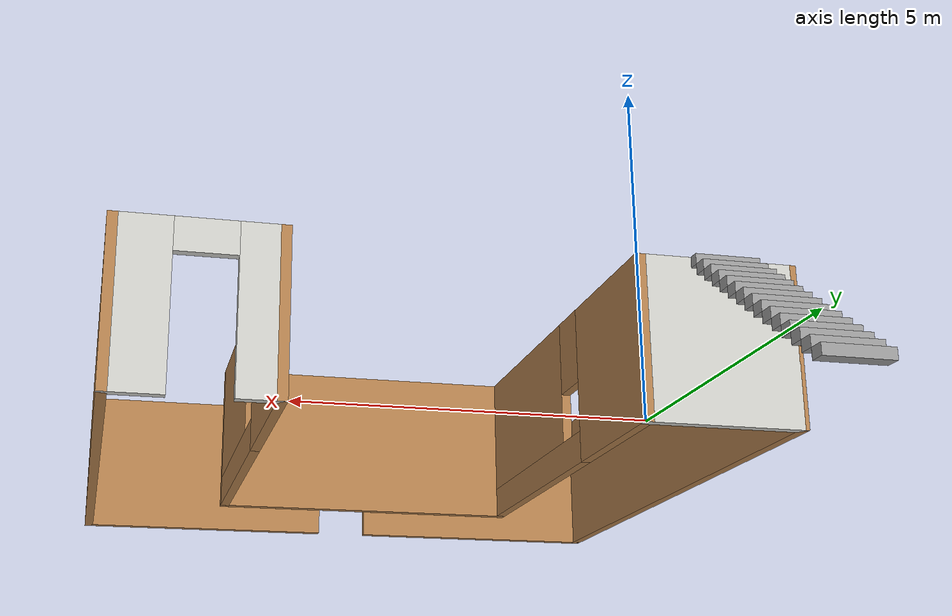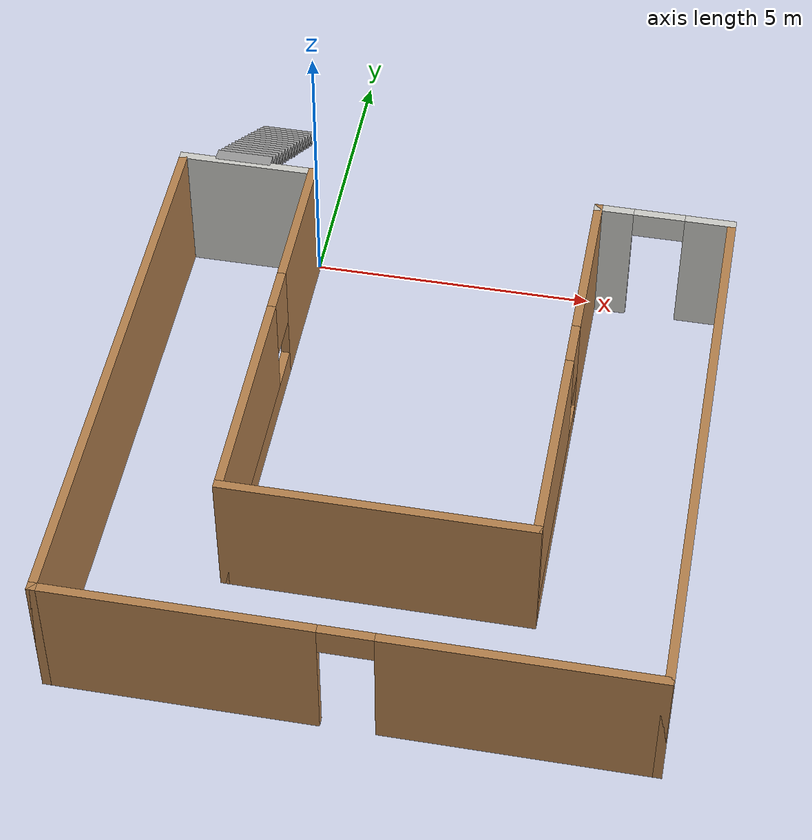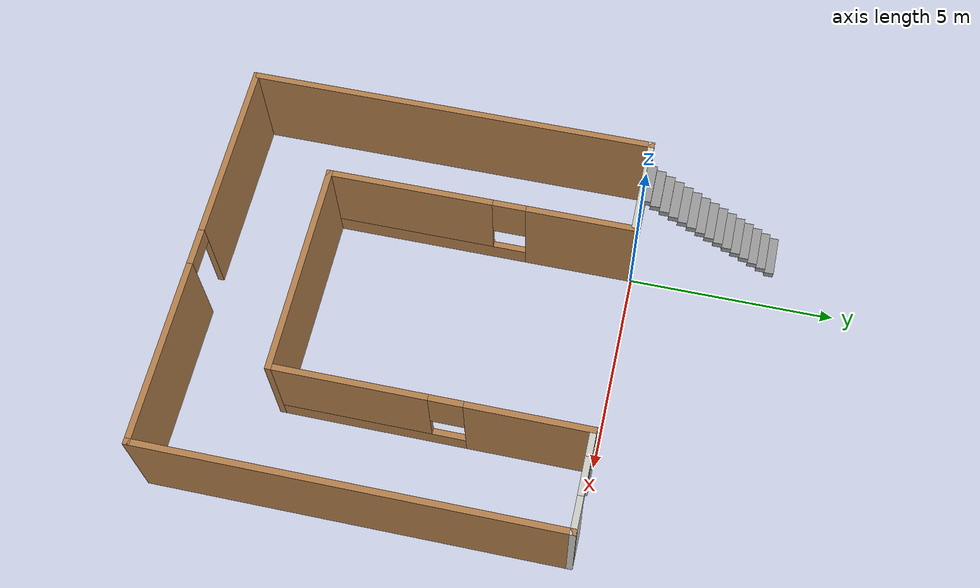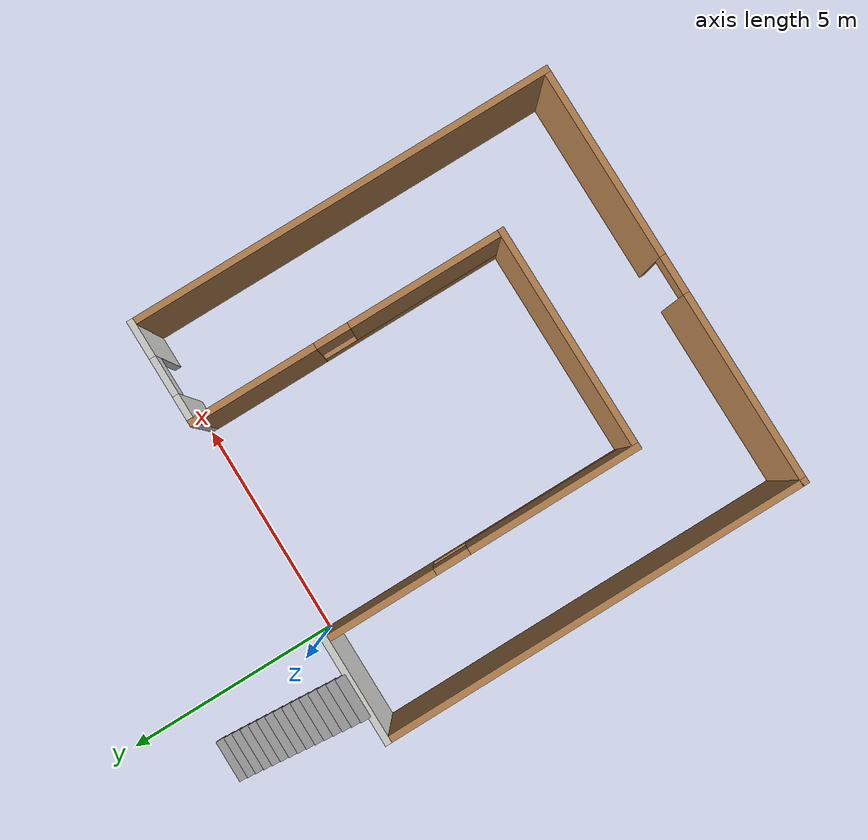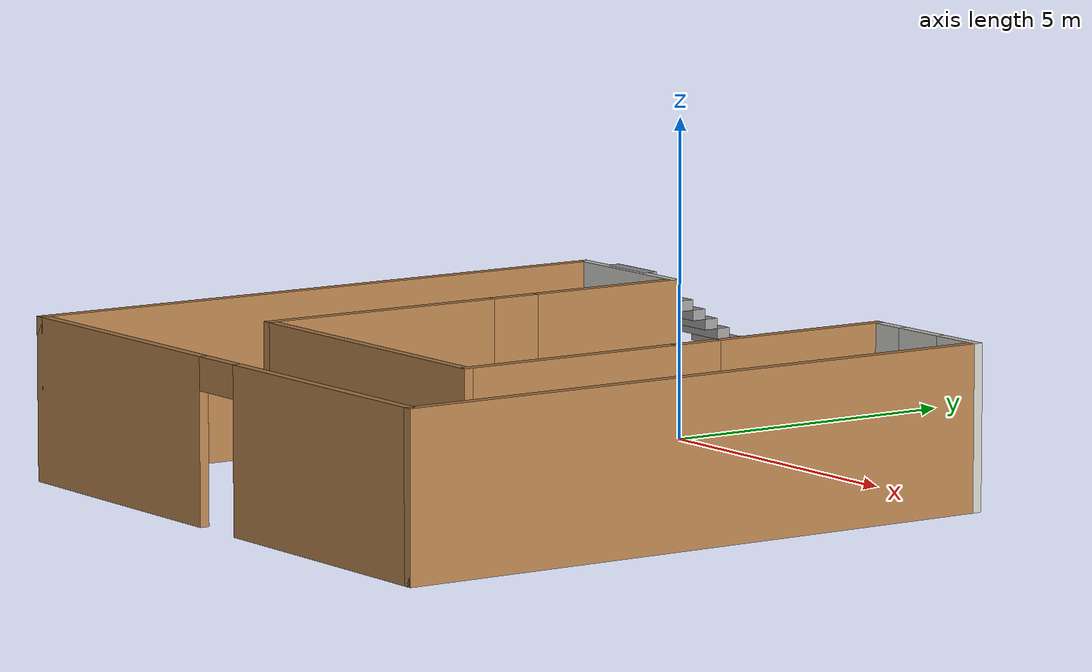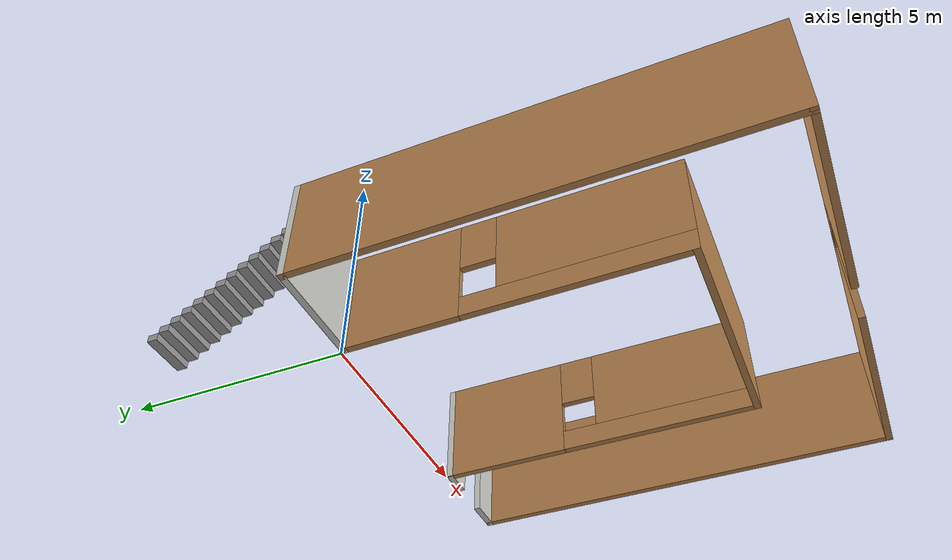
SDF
<?xml version='1.0'?>
<sdf version='1.6'>
  <model name='Casa'>
    <pose frame=''>2.50839 -3.29533 0 0 -0 0</pose>
    <link name='Stairs_0'>
      <visual name='Stairs_0_Visual_0'>
        <pose frame=''>-3.84178 6.603 0.083333 0 -0 0</pose>
        <geometry>
          <box>
            <size>1 0.233333 0.166667</size>
          </box>
        </geometry>
        <material>
          <script>
            <uri>file://media/materials/scripts/gazebo.material</uri>
            <name>Gazebo/Grey</name>
          </script>
          <ambient>1 1 1 1</ambient>
        </material>
      </visual>
      <collision name='Stairs_0_Collision_0'>
        <geometry>
          <box>
            <size>1 0.233333 0.166667</size>
          </box>
        </geometry>
        <pose frame=''>-3.84178 6.603 0.083333 0 -0 0</pose>
      </collision>
      <visual name='Stairs_0_Visual_1'>
        <pose frame=''>-3.84178 6.36967 0.25 0 -0 0</pose>
        <geometry>
          <box>
            <size>1 0.233333 0.166667</size>
          </box>
        </geometry>
        <material>
          <script>
            <uri>file://media/materials/scripts/gazebo.material</uri>
            <name>Gazebo/Grey</name>
          </script>
          <ambient>1 1 1 1</ambient>
        </material>
      </visual>
      <collision name='Stairs_0_Collision_1'>
        <geometry>
          <box>
            <size>1 0.233333 0.166667</size>
          </box>
        </geometry>
        <pose frame=''>-3.84178 6.36967 0.25 0 -0 0</pose>
      </collision>
      <visual name='Stairs_0_Visual_2'>
        <pose frame=''>-3.84178 6.13634 0.416667 0 -0 0</pose>
        <geometry>
          <box>
            <size>1 0.233333 0.166667</size>
          </box>
        </geometry>
        <material>
          <script>
            <uri>file://media/materials/scripts/gazebo.material</uri>
            <name>Gazebo/Grey</name>
          </script>
          <ambient>1 1 1 1</ambient>
        </material>
      </visual>
      <collision name='Stairs_0_Collision_2'>
        <geometry>
          <box>
            <size>1 0.233333 0.166667</size>
          </box>
        </geometry>
        <pose frame=''>-3.84178 6.13634 0.416667 0 -0 0</pose>
      </collision>
      <visual name='Stairs_0_Visual_3'>
        <pose frame=''>-3.84178 5.903 0.583333 0 -0 0</pose>
        <geometry>
          <box>
            <size>1 0.233333 0.166667</size>
          </box>
        </geometry>
        <material>
          <script>
            <uri>file://media/materials/scripts/gazebo.material</uri>
            <name>Gazebo/Grey</name>
          </script>
          <ambient>1 1 1 1</ambient>
        </material>
      </visual>
      <collision name='Stairs_0_Collision_3'>
        <geometry>
          <box>
            <size>1 0.233333 0.166667</size>
          </box>
        </geometry>
        <pose frame=''>-3.84178 5.903 0.583333 0 -0 0</pose>
      </collision>
      <visual name='Stairs_0_Visual_4'>
        <pose frame=''>-3.84178 5.66967 0.75 0 -0 0</pose>
        <geometry>
          <box>
            <size>1 0.233333 0.166667</size>
          </box>
        </geometry>
        <material>
          <script>
            <uri>file://media/materials/scripts/gazebo.material</uri>
            <name>Gazebo/Grey</name>
          </script>
          <ambient>1 1 1 1</ambient>
        </material>
      </visual>
      <collision name='Stairs_0_Collision_4'>
        <geometry>
          <box>
            <size>1 0.233333 0.166667</size>
          </box>
        </geometry>
        <pose frame=''>-3.84178 5.66967 0.75 0 -0 0</pose>
      </collision>
      <visual name='Stairs_0_Visual_5'>
        <pose frame=''>-3.84178 5.43634 0.916667 0 -0 0</pose>
        <geometry>
          <box>
            <size>1 0.233333 0.166667</size>
          </box>
        </geometry>
        <material>
          <script>
            <uri>file://media/materials/scripts/gazebo.material</uri>
            <name>Gazebo/Grey</name>
          </script>
          <ambient>1 1 1 1</ambient>
        </material>
      </visual>
      <collision name='Stairs_0_Collision_5'>
        <geometry>
          <box>
            <size>1 0.233333 0.166667</size>
          </box>
        </geometry>
        <pose frame=''>-3.84178 5.43634 0.916667 0 -0 0</pose>
      </collision>
      <visual name='Stairs_0_Visual_6'>
        <pose frame=''>-3.84178 5.203 1.08333 0 -0 0</pose>
        <geometry>
          <box>
            <size>1 0.233333 0.166667</size>
          </box>
        </geometry>
        <material>
          <script>
            <uri>file://media/materials/scripts/gazebo.material</uri>
            <name>Gazebo/Grey</name>
          </script>
          <ambient>1 1 1 1</ambient>
        </material>
      </visual>
      <collision name='Stairs_0_Collision_6'>
        <geometry>
          <box>
            <size>1 0.233333 0.166667</size>
          </box>
        </geometry>
        <pose frame=''>-3.84178 5.203 1.08333 0 -0 0</pose>
      </collision>
      <visual name='Stairs_0_Visual_7'>
        <pose frame=''>-3.84178 4.96967 1.25 0 -0 0</pose>
        <geometry>
          <box>
            <size>1 0.233333 0.166667</size>
          </box>
        </geometry>
        <material>
          <script>
            <uri>file://media/materials/scripts/gazebo.material</uri>
            <name>Gazebo/Grey</name>
          </script>
          <ambient>1 1 1 1</ambient>
        </material>
      </visual>
      <collision name='Stairs_0_Collision_7'>
        <geometry>
          <box>
            <size>1 0.233333 0.166667</size>
          </box>
        </geometry>
        <pose frame=''>-3.84178 4.96967 1.25 0 -0 0</pose>
      </collision>
      <visual name='Stairs_0_Visual_8'>
        <pose frame=''>-3.84178 4.73634 1.41667 0 -0 0</pose>
        <geometry>
          <box>
            <size>1 0.233333 0.166667</size>
          </box>
        </geometry>
        <material>
          <script>
            <uri>file://media/materials/scripts/gazebo.material</uri>
            <name>Gazebo/Grey</name>
          </script>
          <ambient>1 1 1 1</ambient>
        </material>
      </visual>
      <collision name='Stairs_0_Collision_8'>
        <geometry>
          <box>
            <size>1 0.233333 0.166667</size>
          </box>
        </geometry>
        <pose frame=''>-3.84178 4.73634 1.41667 0 -0 0</pose>
      </collision>
      <visual name='Stairs_0_Visual_9'>
        <pose frame=''>-3.84178 4.503 1.58333 0 -0 0</pose>
        <geometry>
          <box>
            <size>1 0.233333 0.166667</size>
          </box>
        </geometry>
        <material>
          <script>
            <uri>file://media/materials/scripts/gazebo.material</uri>
            <name>Gazebo/Grey</name>
          </script>
          <ambient>1 1 1 1</ambient>
        </material>
      </visual>
      <collision name='Stairs_0_Collision_9'>
        <geometry>
          <box>
            <size>1 0.233333 0.166667</size>
          </box>
        </geometry>
        <pose frame=''>-3.84178 4.503 1.58333 0 -0 0</pose>
      </collision>
      <visual name='Stairs_0_Visual_10'>
        <pose frame=''>-3.84178 4.26967 1.75 0 -0 0</pose>
        <geometry>
          <box>
            <size>1 0.233333 0.166667</size>
          </box>
        </geometry>
        <material>
          <script>
            <uri>file://media/materials/scripts/gazebo.material</uri>
            <name>Gazebo/Grey</name>
          </script>
          <ambient>1 1 1 1</ambient>
        </material>
      </visual>
      <collision name='Stairs_0_Collision_10'>
        <geometry>
          <box>
            <size>1 0.233333 0.166667</size>
          </box>
        </geometry>
        <pose frame=''>-3.84178 4.26967 1.75 0 -0 0</pose>
      </collision>
      <visual name='Stairs_0_Visual_11'>
        <pose frame=''>-3.84178 4.03634 1.91667 0 -0 0</pose>
        <geometry>
          <box>
            <size>1 0.233333 0.166667</size>
          </box>
        </geometry>
        <material>
          <script>
            <uri>file://media/materials/scripts/gazebo.material</uri>
            <name>Gazebo/Grey</name>
          </script>
          <ambient>1 1 1 1</ambient>
        </material>
      </visual>
      <collision name='Stairs_0_Collision_11'>
        <geometry>
          <box>
            <size>1 0.233333 0.166667</size>
          </box>
        </geometry>
        <pose frame=''>-3.84178 4.03634 1.91667 0 -0 0</pose>
      </collision>
      <visual name='Stairs_0_Visual_12'>
        <pose frame=''>-3.84178 3.803 2.08333 0 -0 0</pose>
        <geometry>
          <box>
            <size>1 0.233333 0.166667</size>
          </box>
        </geometry>
        <material>
          <script>
            <uri>file://media/materials/scripts/gazebo.material</uri>
            <name>Gazebo/Grey</name>
          </script>
          <ambient>1 1 1 1</ambient>
        </material>
      </visual>
      <collision name='Stairs_0_Collision_12'>
        <geometry>
          <box>
            <size>1 0.233333 0.166667</size>
          </box>
        </geometry>
        <pose frame=''>-3.84178 3.803 2.08333 0 -0 0</pose>
      </collision>
      <visual name='Stairs_0_Visual_13'>
        <pose frame=''>-3.84178 3.56967 2.25 0 -0 0</pose>
        <geometry>
          <box>
            <size>1 0.233333 0.166667</size>
          </box>
        </geometry>
        <material>
          <script>
            <uri>file://media/materials/scripts/gazebo.material</uri>
            <name>Gazebo/Grey</name>
          </script>
          <ambient>1 1 1 1</ambient>
        </material>
      </visual>
      <collision name='Stairs_0_Collision_13'>
        <geometry>
          <box>
            <size>1 0.233333 0.166667</size>
          </box>
        </geometry>
        <pose frame=''>-3.84178 3.56967 2.25 0 -0 0</pose>
      </collision>
      <visual name='Stairs_0_Visual_14'>
        <pose frame=''>-3.84178 3.33634 2.41667 0 -0 0</pose>
        <geometry>
          <box>
            <size>1 0.233333 0.166667</size>
          </box>
        </geometry>
        <material>
          <script>
            <uri>file://media/materials/scripts/gazebo.material</uri>
            <name>Gazebo/Grey</name>
          </script>
          <ambient>1 1 1 1</ambient>
        </material>
      </visual>
      <collision name='Stairs_0_Collision_14'>
        <geometry>
          <box>
            <size>1 0.233333 0.166667</size>
          </box>
        </geometry>
        <pose frame=''>-3.84178 3.33634 2.41667 0 -0 0</pose>
      </collision>
    </link>
    <link name='Wall_0'>
      <collision name='Wall_0_Collision'>
        <geometry>
          <box>
            <size>10 0.15 2.5</size>
          </box>
        </geometry>
        <pose frame=''>0 0 1.25 0 -0 0</pose>
      </collision>
      <visual name='Wall_0_Visual'>
        <pose frame=''>0 0 1.25 0 -0 0</pose>
        <geometry>
          <box>
            <size>10 0.15 2.5</size>
          </box>
        </geometry>
        <material>
          <script>
            <uri>file://media/materials/scripts/gazebo.material</uri>
            <name>Gazebo/Wood</name>
          </script>
          <ambient>1 1 1 1</ambient>
        </material>
      </visual>
      <pose frame=''>-4.91839 -1.71967 0 0 0 -1.5708</pose>
    </link>
    <link name='Wall_11'>
      <pose frame=''>-2.56839 -0.469669 0 0 0 -1.5708</pose>
      <visual name='Wall_11_Visual_0'>
        <pose frame=''>-2.42195 0 1.25 0 -0 0</pose>
        <geometry>
          <box>
            <size>2.6561 0.15 2.5</size>
          </box>
        </geometry>
        <material>
          <script>
            <uri>file://media/materials/scripts/gazebo.material</uri>
            <name>Gazebo/Wood</name>
          </script>
          <ambient>1 1 1 1</ambient>
        </material>
      </visual>
      <collision name='Wall_11_Collision_0'>
        <geometry>
          <box>
            <size>2.6561 0.15 2.5</size>
          </box>
        </geometry>
        <pose frame=''>-2.42195 0 1.25 0 -0 0</pose>
      </collision>
      <visual name='Wall_11_Visual_1'>
        <pose frame=''>1.32805 0 0.25 0 -0 0</pose>
        <geometry>
          <box>
            <size>4.8439 0.15 0.5</size>
          </box>
        </geometry>
        <material>
          <script>
            <uri>file://media/materials/scripts/gazebo.material</uri>
            <name>Gazebo/Wood</name>
          </script>
          <ambient>1 1 1 1</ambient>
        </material>
      </visual>
      <collision name='Wall_11_Collision_1'>
        <geometry>
          <box>
            <size>4.8439 0.15 0.5</size>
          </box>
        </geometry>
        <pose frame=''>1.32805 0 0.25 0 -0 0</pose>
      </collision>
      <visual name='Wall_11_Visual_2'>
        <pose frame=''>1.72805 0 1.5 0 -0 0</pose>
        <geometry>
          <box>
            <size>4.0439 0.15 2</size>
          </box>
        </geometry>
        <material>
          <script>
            <uri>file://media/materials/scripts/gazebo.material</uri>
            <name>Gazebo/Wood</name>
          </script>
          <ambient>1 1 1 1</ambient>
        </material>
      </visual>
      <collision name='Wall_11_Collision_2'>
        <geometry>
          <box>
            <size>4.0439 0.15 2</size>
          </box>
        </geometry>
        <pose frame=''>1.72805 0 1.5 0 -0 0</pose>
      </collision>
      <visual name='Wall_11_Visual_3'>
        <pose frame=''>-0.6939 0 1.9 0 -0 0</pose>
        <geometry>
          <box>
            <size>0.8 0.15 1.2</size>
          </box>
        </geometry>
        <material>
          <script>
            <uri>file://media/materials/scripts/gazebo.material</uri>
            <name>Gazebo/Wood</name>
          </script>
          <ambient>1 1 1 1</ambient>
        </material>
      </visual>
      <collision name='Wall_11_Collision_3'>
        <geometry>
          <box>
            <size>0.8 0.15 1.2</size>
          </box>
        </geometry>
        <pose frame=''>-0.6939 0 1.9 0 -0 0</pose>
      </collision>
    </link>
    <link name='Wall_12'>
      <collision name='Wall_12_Collision'>
        <geometry>
          <box>
            <size>5.28677 0.15 2.5</size>
          </box>
        </geometry>
        <pose frame=''>0 0 1.25 0 -0 0</pose>
      </collision>
      <visual name='Wall_12_Visual'>
        <pose frame=''>0 0 1.25 0 -0 0</pose>
        <geometry>
          <box>
            <size>5.28677 0.15 2.5</size>
          </box>
        </geometry>
        <material>
          <script>
            <uri>file://media/materials/scripts/gazebo.material</uri>
            <name>Gazebo/Wood</name>
          </script>
          <ambient>1 1 1 1</ambient>
        </material>
      </visual>
      <pose frame=''>0 -4.14467 0 0 -0 0</pose>
    </link>
    <link name='Wall_3'>
      <collision name='Wall_3_Collision'>
        <geometry>
          <box>
            <size>2.5 0.15 2.5</size>
          </box>
        </geometry>
        <pose frame=''>0 0 1.25 0 -0 0</pose>
      </collision>
      <visual name='Wall_3_Visual'>
        <pose frame=''>0 0 1.25 0 -0 0</pose>
        <geometry>
          <box>
            <size>2.5 0.15 2.5</size>
          </box>
        </geometry>
        <material>
          <script>
            <uri>file://media/materials/scripts/gazebo.material</uri>
            <name>Gazebo/CeilingTiled</name>
          </script>
          <ambient>1 1 1 1</ambient>
        </material>
      </visual>
      <pose frame=''>-3.74339 3.20533 0 0 -0 0</pose>
    </link>
    <link name='Wall_5'>
      <pose frame=''>-0.006613 -6.64467 0 0 -0 0</pose>
      <visual name='Wall_5_Visual_0'>
        <pose frame=''>-2.71469 0 1.25 0 -0 0</pose>
        <geometry>
          <box>
            <size>4.54416 0.15 2.5</size>
          </box>
        </geometry>
        <material>
          <script>
            <uri>file://media/materials/scripts/gazebo.material</uri>
            <name>Gazebo/Wood</name>
          </script>
          <ambient>1 1 1 1</ambient>
        </material>
      </visual>
      <collision name='Wall_5_Collision_0'>
        <geometry>
          <box>
            <size>4.54416 0.15 2.5</size>
          </box>
        </geometry>
        <pose frame=''>-2.71469 0 1.25 0 -0 0</pose>
      </collision>
      <visual name='Wall_5_Visual_1'>
        <pose frame=''>2.72208 0 1.25 0 -0 0</pose>
        <geometry>
          <box>
            <size>4.52939 0.15 2.5</size>
          </box>
        </geometry>
        <material>
          <script>
            <uri>file://media/materials/scripts/gazebo.material</uri>
            <name>Gazebo/Wood</name>
          </script>
          <ambient>1 1 1 1</ambient>
        </material>
      </visual>
      <collision name='Wall_5_Collision_1'>
        <geometry>
          <box>
            <size>4.52939 0.15 2.5</size>
          </box>
        </geometry>
        <pose frame=''>2.72208 0 1.25 0 -0 0</pose>
      </collision>
      <visual name='Wall_5_Visual_2'>
        <pose frame=''>0.007387 0 2.25 0 -0 0</pose>
        <geometry>
          <box>
            <size>0.9 0.15 0.5</size>
          </box>
        </geometry>
        <material>
          <script>
            <uri>file://media/materials/scripts/gazebo.material</uri>
            <name>Gazebo/Wood</name>
          </script>
          <ambient>1 1 1 1</ambient>
        </material>
      </visual>
      <collision name='Wall_5_Collision_2'>
        <geometry>
          <box>
            <size>0.9 0.15 0.5</size>
          </box>
        </geometry>
        <pose frame=''>0.007387 0 2.25 0 -0 0</pose>
      </collision>
    </link>
    <link name='Wall_6'>
      <collision name='Wall_6_Collision'>
        <geometry>
          <box>
            <size>10 0.15 2.5</size>
          </box>
        </geometry>
        <pose frame=''>0 0 1.25 0 -0 0</pose>
      </collision>
      <visual name='Wall_6_Visual'>
        <pose frame=''>0 0 1.25 0 -0 0</pose>
        <geometry>
          <box>
            <size>10 0.15 2.5</size>
          </box>
        </geometry>
        <material>
          <script>
            <uri>file://media/materials/scripts/gazebo.material</uri>
            <name>Gazebo/Wood</name>
          </script>
          <ambient>1 1 1 1</ambient>
        </material>
      </visual>
      <pose frame=''>4.91839 -1.71967 0 0 -0 1.5708</pose>
    </link>
    <link name='Wall_8'>
      <pose frame=''>3.74339 3.20533 0 0 -0 3.14159</pose>
      <visual name='Wall_8_Visual_0'>
        <pose frame=''>-0.802593 0 1.25 0 -0 0</pose>
        <geometry>
          <box>
            <size>0.894814 0.15 2.5</size>
          </box>
        </geometry>
        <material>
          <script>
            <uri>file://media/materials/scripts/gazebo.material</uri>
            <name>Gazebo/CeilingTiled</name>
          </script>
          <ambient>1 1 1 1</ambient>
        </material>
      </visual>
      <collision name='Wall_8_Collision_0'>
        <geometry>
          <box>
            <size>0.894814 0.15 2.5</size>
          </box>
        </geometry>
        <pose frame=''>-0.802593 0 1.25 0 -0 0</pose>
      </collision>
      <visual name='Wall_8_Visual_1'>
        <pose frame=''>0.897407 0 1.25 0 -0 0</pose>
        <geometry>
          <box>
            <size>0.705186 0.15 2.5</size>
          </box>
        </geometry>
        <material>
          <script>
            <uri>file://media/materials/scripts/gazebo.material</uri>
            <name>Gazebo/CeilingTiled</name>
          </script>
          <ambient>1 1 1 1</ambient>
        </material>
      </visual>
      <collision name='Wall_8_Collision_1'>
        <geometry>
          <box>
            <size>0.705186 0.15 2.5</size>
          </box>
        </geometry>
        <pose frame=''>0.897407 0 1.25 0 -0 0</pose>
      </collision>
      <visual name='Wall_8_Visual_2'>
        <pose frame=''>0.094814 0 2.25 0 -0 0</pose>
        <geometry>
          <box>
            <size>0.9 0.15 0.5</size>
          </box>
        </geometry>
        <material>
          <script>
            <uri>file://media/materials/scripts/gazebo.material</uri>
            <name>Gazebo/CeilingTiled</name>
          </script>
          <ambient>1 1 1 1</ambient>
        </material>
      </visual>
      <collision name='Wall_8_Collision_2'>
        <geometry>
          <box>
            <size>0.9 0.15 0.5</size>
          </box>
        </geometry>
        <pose frame=''>0.094814 0 2.25 0 -0 0</pose>
      </collision>
    </link>
    <link name='Wall_9'>
      <pose frame=''>2.56839 -0.469669 0 0 0 -1.5708</pose>
      <visual name='Wall_9_Visual_0'>
        <pose frame=''>-2.25912 0 1.25 0 -0 0</pose>
        <geometry>
          <box>
            <size>2.98177 0.15 2.5</size>
          </box>
        </geometry>
        <material>
          <script>
            <uri>file://media/materials/scripts/gazebo.material</uri>
            <name>Gazebo/Wood</name>
          </script>
          <ambient>1 1 1 1</ambient>
        </material>
      </visual>
      <collision name='Wall_9_Collision_0'>
        <geometry>
          <box>
            <size>2.98177 0.15 2.5</size>
          </box>
        </geometry>
        <pose frame=''>-2.25912 0 1.25 0 -0 0</pose>
      </collision>
      <visual name='Wall_9_Visual_1'>
        <pose frame=''>1.49088 0 0.25 0 -0 0</pose>
        <geometry>
          <box>
            <size>4.51823 0.15 0.5</size>
          </box>
        </geometry>
        <material>
          <script>
            <uri>file://media/materials/scripts/gazebo.material</uri>
            <name>Gazebo/Wood</name>
          </script>
          <ambient>1 1 1 1</ambient>
        </material>
      </visual>
      <collision name='Wall_9_Collision_1'>
        <geometry>
          <box>
            <size>4.51823 0.15 0.5</size>
          </box>
        </geometry>
        <pose frame=''>1.49088 0 0.25 0 -0 0</pose>
      </collision>
      <visual name='Wall_9_Visual_2'>
        <pose frame=''>1.89088 0 1.5 0 -0 0</pose>
        <geometry>
          <box>
            <size>3.71823 0.15 2</size>
          </box>
        </geometry>
        <material>
          <script>
            <uri>file://media/materials/scripts/gazebo.material</uri>
            <name>Gazebo/Wood</name>
          </script>
          <ambient>1 1 1 1</ambient>
        </material>
      </visual>
      <collision name='Wall_9_Collision_2'>
        <geometry>
          <box>
            <size>3.71823 0.15 2</size>
          </box>
        </geometry>
        <pose frame=''>1.89088 0 1.5 0 -0 0</pose>
      </collision>
      <visual name='Wall_9_Visual_3'>
        <pose frame=''>-0.368232 0 1.9 0 -0 0</pose>
        <geometry>
          <box>
            <size>0.8 0.15 1.2</size>
          </box>
        </geometry>
        <material>
          <script>
            <uri>file://media/materials/scripts/gazebo.material</uri>
            <name>Gazebo/Wood</name>
          </script>
          <ambient>1 1 1 1</ambient>
        </material>
      </visual>
      <collision name='Wall_9_Collision_3'>
        <geometry>
          <box>
            <size>0.8 0.15 1.2</size>
          </box>
        </geometry>
        <pose frame=''>-0.368232 0 1.9 0 -0 0</pose>
      </collision>
    </link>
    <static>1</static>
  </model>
</sdf>
